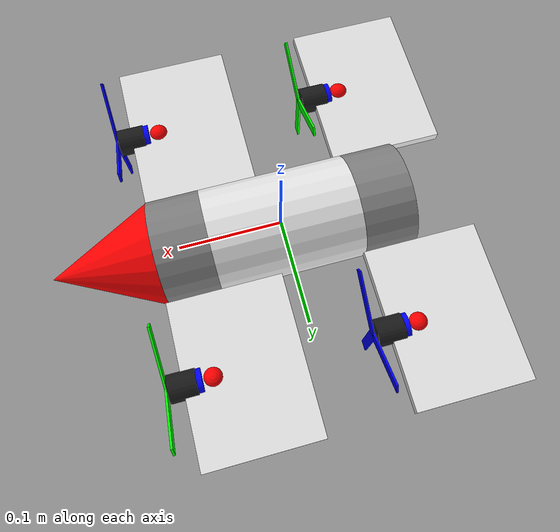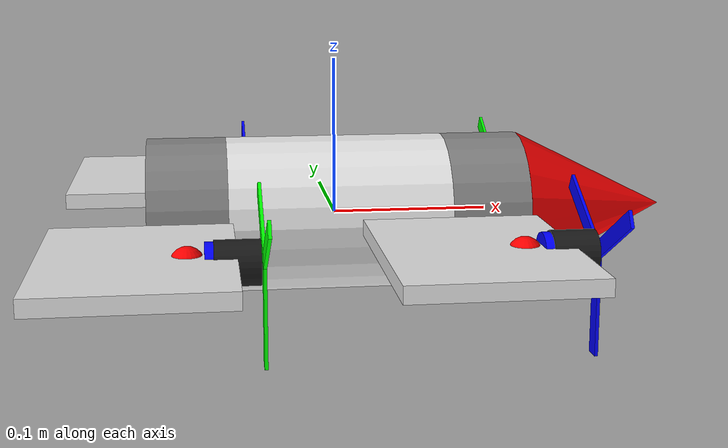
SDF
<?xml version="1.0"?>
<sdf version="1.9">
  <model name="morphing_quad">
    <pose>0 0 0 0 0 0</pose>
    <link name="base_link">
      <inertial>
        <pose degrees="true">0 0 0 0 90 0</pose>
        <mass>0.3</mass>
        <inertia>
          <ixx>0.0006775</ixx>
          <ixy>0</ixy>
          <ixz>0</ixz>
          <iyy>0.0006775</iyy>
          <iyz>0</iyz>
          <izz>0.000375</izz>
        </inertia>
      </inertial>
      <collision name="collision">
        <pose degrees="true">0 0 0 0 90 0</pose>
        <geometry>
          <box>
            <size>0.1 0.1 0.140</size>
          </box>
        </geometry>
        <surface>
          <friction>
            <ode>
              <mu>1.0</mu>
              <mu2>1.0</mu2>
            </ode>
          </friction>
        </surface>
      </collision>
      <visual name="visual">
        <pose degrees="true">0 0 0 0 90 0</pose>
        <geometry>
          <cylinder>
            <radius>0.05</radius>
            <length>0.140</length>
          </cylinder>
        </geometry>
        <material>
          <ambient>0.9 0.9 0.9 1</ambient>
          <diffuse>0.9 0.9 0.9 1</diffuse>
          <specular>0.1 0.1 0.1 1</specular>
        </material>
      </visual>
      <sensor name="imu_sensor" type="imu">
        <pose degrees="true">0 0 0 180 0 0</pose>
        <always_on>1</always_on>
        <update_rate>1000.0</update_rate>
      </sensor>
    </link>

    <link name="fuselage_front_link">
      <pose>0.095 0 0 0 0 0</pose>
      <inertial>
        <pose degrees="true">0 0 0 0 90 0</pose>
        <mass>0.05</mass>
        <inertia>
          <ixx>5.54167E-05</ixx>
          <ixy>0</ixy>
          <ixz>0</ixz>
          <iyy>5.54167E-05</iyy>
          <iyz>0</iyz>
          <izz>0.00009</izz>
        </inertia>
      </inertial>
      <collision name="collision">
        <pose degrees="true">0 0 0 0 90 0</pose>
        <geometry>
          <cylinder>
            <radius>0.05</radius>
            <length>0.05</length>
          </cylinder>
        </geometry>
      </collision>
      <collision name="nose_cone_collision">
        <pose degrees="true">0.075 0 0 0 90 0</pose>
        <geometry>
          <cone>
            <radius>0.05</radius>
            <length>0.10</length>
          </cone>
        </geometry>
      </collision>
      <visual name="visual">
        <pose degrees="true">0 0 0 0 90 0</pose>
        <geometry>
          <cylinder>
            <radius>0.05</radius>
            <length>0.05</length>
          </cylinder>
        </geometry>
        <material>
          <ambient>0.5 0.5 0.5 1</ambient>
          <diffuse>0.5 0.5 0.5 1</diffuse>
          <specular>0.1 0.1 0.1 1</specular>
        </material>
      </visual>
      <visual name="nose_cone_visual">
        <pose degrees="true">0.075 0 0 0 90 0</pose>
        <geometry>
          <cone>
            <radius>0.05</radius>
            <length>0.10</length>
          </cone>
        </geometry>
        <material>
          <ambient>1 0 0 1</ambient>
          <diffuse>1 0 0 1</diffuse>
          <specular>0.1 0.1 0.1 1</specular>
        </material>
      </visual>
    </link>
    <joint name="fuselage_front_joint" type="revolute">
      <pose>-0.025 0 0 0 0 0</pose>
      <parent>base_link</parent>
      <child>fuselage_front_link</child>
      <axis>
        <xyz>0 0 1</xyz>
        <limit>
          <lower>0</lower>
          <upper>0</upper>
        </limit>
        <dynamics>
          <damping>0.1</damping>
        </dynamics>
      </axis>
    </joint>

    <link name="fuselage_back_link">
      <pose>-0.095 0 0 0 0 0</pose>
      <inertial>
        <pose degrees="true">0 0 0 0 90 0</pose>
        <mass>0.05</mass>
        <inertia>
          <ixx>5.54167E-05</ixx>
          <ixy>0</ixy>
          <ixz>0</ixz>
          <iyy>5.54167E-05</iyy>
          <iyz>0</iyz>
          <izz>0.00009</izz>
        </inertia>
      </inertial>
      <collision name="collision">
        <pose degrees="true">0 0 0 0 90 0</pose>
        <geometry>
          <cylinder>
            <radius>0.05</radius>
            <length>0.05</length>
          </cylinder>
        </geometry>
      </collision>
      <visual name="visual">
        <pose degrees="true">0 0 0 0 90 0</pose>
        <geometry>
          <cylinder>
            <radius>0.05</radius>
            <length>0.05</length>
          </cylinder>
        </geometry>
        <material>
          <ambient>0.5 0.5 0.5 1</ambient>
          <diffuse>0.5 0.5 0.5 1</diffuse>
          <specular>0.1 0.1 0.1 1</specular>
        </material>
      </visual>
    </link>
    <joint name="fuselage_back_joint" type="revolute">
      <pose>0.025 0 0 0 0 0</pose>
      <parent>base_link</parent>
      <child>fuselage_back_link</child>
      <axis>
        <xyz>0 0 1</xyz>
        <limit>
          <lower>0</lower>
          <upper>0</upper>
        </limit>
        <dynamics>
          <damping>0.1</damping>
        </dynamics>
      </axis>
    </joint>

    <link name="wing_front_left_link">
      <pose>0.0675 0.125 0 0 0 0</pose>
      <inertial>
        <mass>0.025</mass>
        <inertia>
          <ixx>4.70833E-05</ixx>
          <ixy>0</ixy>
          <ixz>0</ixz>
          <iyy>2.54167E-05</iyy>
          <iyz>0</iyz>
          <izz>7.20833E-05</izz>
        </inertia>
      </inertial>
      <collision name="collision">
        <geometry>
          <box>
            <size>0.110 0.150 0.010</size>
          </box>
        </geometry>
      </collision>
      <visual name="visual">
        <geometry>
          <box>
            <size>0.110 0.150 0.010</size>
          </box>
        </geometry>
        <material>
          <ambient>0.9 0.9 0.9 1</ambient>
          <diffuse>0.9 0.9 0.9 1</diffuse>
          <specular>0.1 0.1 0.1 1</specular>
        </material>
      </visual>
      <visual name="motor_visual">
        <pose degrees="true">0.05 0 0 0 90 0</pose>
        <geometry>
          <cylinder>
            <radius>0.012</radius>
            <length>0.026</length>
          </cylinder>
        </geometry>
        <material>
          <ambient>0 0 1 1</ambient>
          <diffuse>0 0 1 1</diffuse>
          <specular>0.1 0.1 0.1 1</specular>
        </material>
      </visual>
      <!-- debug visual for lift-drag centre of pressure -->
      <visual name="cp_visual">
        <pose>0.0275 0 0 0 0 0</pose>
        <geometry>
          <sphere>
            <radius>0.01</radius>
          </sphere>
        </geometry>
        <material>
          <ambient>1 0 0 1</ambient>
          <diffuse>1 0 0 1</diffuse>
          <specular>0.1 0.1 0.1 1</specular>
        </material>
      </visual>
    </link>
    <joint name="wing_front_left_joint" type="revolute">
      <pose>0.0275 -0.075 0 0 0 0</pose>
      <parent>fuselage_front_link</parent>
      <child>wing_front_left_link</child>
      <axis>
        <xyz>0 1 0</xyz>
        <limit>
          <lower>-2.0943951023931953</lower>
          <upper>0.5235987755982988</upper>
        </limit>
        <dynamics>
          <damping>0.01</damping>
        </dynamics>
      </axis>
    </joint>

    <link name="wing_front_right_link">
      <pose>0.0675 -0.125 0 0 0 0</pose>
      <inertial>
        <mass>0.025</mass>
        <inertia>
          <ixx>4.70833E-05</ixx>
          <ixy>0</ixy>
          <ixz>0</ixz>
          <iyy>2.54167E-05</iyy>
          <iyz>0</iyz>
          <izz>7.20833E-05</izz>
        </inertia>
      </inertial>
      <collision name="collision">
        <geometry>
          <box>
            <size>0.110 0.150 0.010</size>
          </box>
        </geometry>
      </collision>
      <visual name="visual">
        <geometry>
          <box>
            <size>0.110 0.150 0.010</size>
          </box>
        </geometry>
        <material>
          <ambient>0.9 0.9 0.9 1</ambient>
          <diffuse>0.9 0.9 0.9 1</diffuse>
          <specular>0.1 0.1 0.1 1</specular>
        </material>
      </visual>
      <visual name="motor_visual">
        <pose degrees="true">0.05 0 0 0 90 0</pose>
        <geometry>
          <cylinder>
            <radius>0.012</radius>
            <length>0.026</length>
          </cylinder>
        </geometry>
        <material>
          <ambient>0 0 1 1</ambient>
          <diffuse>0 0 1 1</diffuse>
          <specular>0.1 0.1 0.1 1</specular>
        </material>
      </visual>
      <!-- debug visual for lift-drag centre of pressure -->
      <visual name="cp_visual">
        <pose>0.0275 0 0 0 0 0</pose>
        <geometry>
          <sphere>
            <radius>0.01</radius>
          </sphere>
        </geometry>
        <material>
          <ambient>1 0 0 1</ambient>
          <diffuse>1 0 0 1</diffuse>
          <specular>0.1 0.1 0.1 1</specular>
        </material>
      </visual>
    </link>
    <joint name="wing_front_right_joint" type="revolute">
      <pose>0.0275 0.075 0 0 0 0</pose>
      <parent>fuselage_front_link</parent>
      <child>wing_front_right_link</child>
      <axis>
        <xyz>0 1 0</xyz>
        <limit>
          <lower>-2.0943951023931953</lower>
          <upper>0.5235987755982988</upper>
        </limit>
        <dynamics>
          <damping>0.01</damping>
        </dynamics>
      </axis>
    </joint>

    <link name="wing_back_left_link">
      <pose>-0.1225 0.125 0 0 0 0</pose>
      <inertial>
        <mass>0.025</mass>
        <inertia>
          <ixx>4.70833E-05</ixx>
          <ixy>0</ixy>
          <ixz>0</ixz>
          <iyy>2.54167E-05</iyy>
          <iyz>0</iyz>
          <izz>7.20833E-05</izz>
        </inertia>
      </inertial>
      <collision name="collision">
        <geometry>
          <box>
            <size>0.110 0.150 0.010</size>
          </box>
        </geometry>
      </collision>
      <visual name="visual">
        <geometry>
          <box>
            <size>0.110 0.150 0.010</size>
          </box>
        </geometry>
        <material>
          <ambient>0.9 0.9 0.9 1</ambient>
          <diffuse>0.9 0.9 0.9 1</diffuse>
          <specular>0.1 0.1 0.1 1</specular>
        </material>
      </visual>
      <visual name="motor_visual">
        <pose degrees="true">0.05 0 0 0 90 0</pose>
        <geometry>
          <cylinder>
            <radius>0.012</radius>
            <length>0.026</length>
          </cylinder>
        </geometry>
        <material>
          <ambient>0 0 1 1</ambient>
          <diffuse>0 0 1 1</diffuse>
          <specular>0.1 0.1 0.1 1</specular>
        </material>
      </visual>
      <!-- debug visual for lift-drag centre of pressure -->
      <visual name="cp_visual">
        <pose>0.0275 0 0 0 0 0</pose>
        <geometry>
          <sphere>
            <radius>0.01</radius>
          </sphere>
        </geometry>
        <material>
          <ambient>1 0 0 1</ambient>
          <diffuse>1 0 0 1</diffuse>
          <specular>0.1 0.1 0.1 1</specular>
        </material>
      </visual>
    </link>
    <joint name="wing_back_left_joint" type="revolute">
      <pose>0.0275 -0.075 0 0 0 0</pose>
      <parent>fuselage_back_link</parent>
      <child>wing_back_left_link</child>
      <axis>
        <xyz>0 1 0</xyz>
        <limit>
          <lower>-2.0943951023931953</lower>
          <upper>0.5235987755982988</upper>
        </limit>
        <dynamics>
          <damping>0.01</damping>
        </dynamics>
      </axis>
    </joint>

    <link name="wing_back_right_link">
      <pose>-0.1225 -0.125 0 0 0 0</pose>
      <inertial>
        <mass>0.025</mass>
        <inertia>
          <ixx>4.70833E-05</ixx>
          <ixy>0</ixy>
          <ixz>0</ixz>
          <iyy>2.54167E-05</iyy>
          <iyz>0</iyz>
          <izz>7.20833E-05</izz>
        </inertia>
      </inertial>
      <collision name="collision">
        <geometry>
          <box>
            <size>0.110 0.150 0.010</size>
          </box>
        </geometry>
      </collision>
      <visual name="visual">
        <geometry>
          <box>
            <size>0.110 0.150 0.010</size>
          </box>
        </geometry>
        <material>
          <ambient>0.9 0.9 0.9 1</ambient>
          <diffuse>0.9 0.9 0.9 1</diffuse>
          <specular>0.1 0.1 0.1 1</specular>
        </material>
      </visual>
      <visual name="motor_visual">
        <pose degrees="true">0.05 0 0 0 90 0</pose>
        <geometry>
          <cylinder>
            <radius>0.012</radius>
            <length>0.026</length>
          </cylinder>
        </geometry>
        <material>
          <ambient>0 0 1 1</ambient>
          <diffuse>0 0 1 1</diffuse>
          <specular>0.1 0.1 0.1 1</specular>
        </material>
      </visual>
      <!-- debug visual for lift-drag centre of pressure -->
      <visual name="cp_visual">
        <pose>0.0275 0 0 0 0 0</pose>
        <geometry>
          <sphere>
            <radius>0.01</radius>
          </sphere>
        </geometry>
        <material>
          <ambient>1 0 0 1</ambient>
          <diffuse>1 0 0 1</diffuse>
          <specular>0.1 0.1 0.1 1</specular>
        </material>
      </visual>
    </link>
    <joint name="wing_back_right_joint" type="revolute">
      <pose>0.0275 0.075 0 0 0 0</pose>
      <parent>fuselage_back_link</parent>
      <child>wing_back_right_link</child>
      <axis>
        <xyz>0 1 0</xyz>
        <limit>
          <lower>-2.0943951023931953</lower>
          <upper>0.5235987755982988</upper>
        </limit>
        <dynamics>
          <damping>0.01</damping>
        </dynamics>
      </axis>
    </joint>

    <link name="motor_front_left_link">
      <pose degrees="true">0.1225 0.125 0 0 90 0</pose>
      <inertial>
        <mass>0.033</mass>
        <inertia>
          <ixx>3.25325E-06</ixx>
          <ixy>0</ixy>
          <ixz>0</ixz>
          <iyy>3.25325E-06</iyy>
          <iyz>0</iyz>
          <izz>2.7885E-06</izz>
        </inertia>
      </inertial>
      <collision name="collision">
        <geometry>
          <cylinder>
            <radius>0.013</radius>
            <length>0.026</length>
          </cylinder>
        </geometry>
      </collision>
      <visual name="visual">
        <geometry>
          <cylinder>
            <radius>0.013</radius>
            <length>0.026</length>
          </cylinder>
        </geometry>
        <material>
          <ambient>0.1 0.1 0.1 1</ambient>
          <diffuse>0.1 0.1 0.1 1</diffuse>
          <specular>0.1 0.1 0.1 1</specular>
        </material>
      </visual>
      <visual name="prop_blade_1_visual">
        <pose degrees="true">0.030625 0 0.015 0 0 0</pose>
        <geometry>
          <box>
            <size>0.06125 0.01 0.002</size>
          </box>
        </geometry>
        <material>
          <ambient>0 1 0 1</ambient>
          <diffuse>0 1 0 1</diffuse>
          <specular>0.1 0.1 0.1 1</specular>
        </material>
      </visual>
      <visual name="prop_blade_2_visual">
        <pose degrees="true">-0.0153125 0.026522027990898433 0.015 0 0 120</pose>
        <geometry>
          <box>
            <size>0.06125 0.01 0.002</size>
          </box>
        </geometry>
        <material>
          <ambient>0 1 0 1</ambient>
          <diffuse>0 1 0 1</diffuse>
          <specular>0.1 0.1 0.1 1</specular>
        </material>
      </visual>
      <visual name="prop_blade_3_visual">
        <pose degrees="true">-0.0153125 -0.026522027990898433 0.015 0 0 240</pose>
        <geometry>
          <box>
            <size>0.06125 0.01 0.002</size>
          </box>
        </geometry>
        <material>
          <ambient>0 1 0 1</ambient>
          <diffuse>0 1 0 1</diffuse>
          <specular>0.1 0.1 0.1 1</specular>
        </material>
      </visual>
    </link>
    <joint name="motor_front_left_joint" type="revolute">
      <pose>0 0 0 0 0 0</pose>
      <parent>wing_front_left_link</parent>
      <child>motor_front_left_link</child>
      <axis>
        <xyz>0 0 1</xyz>
        <limit>
          <lower>-1.0e16</lower>
          <upper>1.0e16</upper>
        </limit>
        <dynamics>
          <damping>0.004</damping>
        </dynamics>
      </axis>
    </joint>

    <link name="motor_front_right_link">
      <pose degrees="true">0.1225 -0.125 0 0 90 0</pose>
      <inertial>
        <mass>0.033</mass>
        <inertia>
          <ixx>3.25325E-06</ixx>
          <ixy>0</ixy>
          <ixz>0</ixz>
          <iyy>3.25325E-06</iyy>
          <iyz>0</iyz>
          <izz>2.7885E-06</izz>
        </inertia>
      </inertial>
      <collision name="collision">
        <geometry>
          <cylinder>
            <radius>0.013</radius>
            <length>0.026</length>
          </cylinder>
        </geometry>
      </collision>
      <visual name="visual">
        <geometry>
          <cylinder>
            <radius>0.013</radius>
            <length>0.026</length>
          </cylinder>
        </geometry>
        <material>
          <ambient>0.1 0.1 0.1 1</ambient>
          <diffuse>0.1 0.1 0.1 1</diffuse>
          <specular>0.1 0.1 0.1 1</specular>
        </material>
      </visual>
      <visual name="prop_blade_1_visual">
        <pose degrees="true">0.030625 0 0.015 0 0 0</pose>
        <geometry>
          <box>
            <size>0.06125 0.01 0.002</size>
          </box>
        </geometry>
        <material>
          <ambient>0 0 1 1</ambient>
          <diffuse>0 0 1 1</diffuse>
          <specular>0.1 0.1 0.1 1</specular>
        </material>
      </visual>
      <visual name="prop_blade_2_visual">
        <pose degrees="true">-0.0153125 0.026522027990898433 0.015 0 0 120</pose>
        <geometry>
          <box>
            <size>0.06125 0.01 0.002</size>
          </box>
        </geometry>
        <material>
          <ambient>0 0 1 1</ambient>
          <diffuse>0 0 1 1</diffuse>
          <specular>0.1 0.1 0.1 1</specular>
        </material>
      </visual>
      <visual name="prop_blade_3_visual">
        <pose degrees="true">-0.0153125 -0.026522027990898433 0.015 0 0 240</pose>
        <geometry>
          <box>
            <size>0.06125 0.01 0.002</size>
          </box>
        </geometry>
        <material>
          <ambient>0 0 1 1</ambient>
          <diffuse>0 0 1 1</diffuse>
          <specular>0.1 0.1 0.1 1</specular>
        </material>
      </visual>
    </link>
    <joint name="motor_front_right_joint" type="revolute">
      <pose>0 0 0 0 0 0</pose>
      <parent>wing_front_right_link</parent>
      <child>motor_front_right_link</child>
      <axis>
        <xyz>0 0 1</xyz>
        <limit>
          <lower>-1.0e16</lower>
          <upper>1.0e16</upper>
        </limit>
        <dynamics>
          <damping>0.004</damping>
        </dynamics>
      </axis>
    </joint>

    <link name="motor_back_left_link">
      <pose degrees="true">-0.0675 0.125 0 0 90 0</pose>
      <inertial>
        <mass>0.033</mass>
        <inertia>
          <ixx>3.25325E-06</ixx>
          <ixy>0</ixy>
          <ixz>0</ixz>
          <iyy>3.25325E-06</iyy>
          <iyz>0</iyz>
          <izz>2.7885E-06</izz>
        </inertia>
      </inertial>
      <collision name="collision">
        <geometry>
          <cylinder>
            <radius>0.013</radius>
            <length>0.026</length>
          </cylinder>
        </geometry>
      </collision>
      <visual name="visual">
        <geometry>
          <cylinder>
            <radius>0.013</radius>
            <length>0.026</length>
          </cylinder>
        </geometry>
        <material>
          <ambient>0.1 0.1 0.1 1</ambient>
          <diffuse>0.1 0.1 0.1 1</diffuse>
          <specular>0.1 0.1 0.1 1</specular>
        </material>
      </visual>
      <visual name="prop_blade_1_visual">
        <pose degrees="true">0.030625 0 0.015 0 0 0</pose>
        <geometry>
          <box>
            <size>0.06125 0.01 0.002</size>
          </box>
        </geometry>
        <material>
          <ambient>0 0 1 1</ambient>
          <diffuse>0 0 1 1</diffuse>
          <specular>0.1 0.1 0.1 1</specular>
        </material>
      </visual>
      <visual name="prop_blade_2_visual">
        <pose degrees="true">-0.0153125 0.026522027990898433 0.015 0 0 120</pose>
        <geometry>
          <box>
            <size>0.06125 0.01 0.002</size>
          </box>
        </geometry>
        <material>
          <ambient>0 0 1 1</ambient>
          <diffuse>0 0 1 1</diffuse>
          <specular>0.1 0.1 0.1 1</specular>
        </material>
      </visual>
      <visual name="prop_blade_3_visual">
        <pose degrees="true">-0.0153125 -0.026522027990898433 0.015 0 0 240</pose>
        <geometry>
          <box>
            <size>0.06125 0.01 0.002</size>
          </box>
        </geometry>
        <material>
          <ambient>0 0 1 1</ambient>
          <diffuse>0 0 1 1</diffuse>
          <specular>0.1 0.1 0.1 1</specular>
        </material>
      </visual>
    </link>
    <joint name="motor_back_left_joint" type="revolute">
      <pose>0 0 0 0 0 0</pose>
      <parent>wing_back_left_link</parent>
      <child>motor_back_left_link</child>
      <axis>
        <xyz>0 0 1</xyz>
        <limit>
          <lower>-1.0e16</lower>
          <upper>1.0e16</upper>
        </limit>
        <dynamics>
          <damping>0.004</damping>
        </dynamics>
      </axis>
    </joint>

    <link name="motor_back_right_link">
      <pose degrees="true">-0.0675 -0.125 0 0 90 0</pose>
      <inertial>
        <mass>0.033</mass>
        <inertia>
          <ixx>3.25325E-06</ixx>
          <ixy>0</ixy>
          <ixz>0</ixz>
          <iyy>3.25325E-06</iyy>
          <iyz>0</iyz>
          <izz>2.7885E-06</izz>
        </inertia>
      </inertial>
      <collision name="collision">
        <geometry>
          <cylinder>
            <radius>0.013</radius>
            <length>0.026</length>
          </cylinder>
        </geometry>
      </collision>
      <visual name="visual">
        <geometry>
          <cylinder>
            <radius>0.013</radius>
            <length>0.026</length>
          </cylinder>
        </geometry>
        <material>
          <ambient>0.1 0.1 0.1 1</ambient>
          <diffuse>0.1 0.1 0.1 1</diffuse>
          <specular>0.1 0.1 0.1 1</specular>
        </material>
      </visual>
      <visual name="prop_blade_1_visual">
        <pose degrees="true">0.030625 0 0.015 0 0 0</pose>
        <geometry>
          <box>
            <size>0.06125 0.01 0.002</size>
          </box>
        </geometry>
        <material>
          <ambient>0 1 0 1</ambient>
          <diffuse>0 1 0 1</diffuse>
          <specular>0.1 0.1 0.1 1</specular>
        </material>
      </visual>
      <visual name="prop_blade_2_visual">
        <pose degrees="true">-0.0153125 0.026522027990898433 0.015 0 0 120</pose>
        <geometry>
          <box>
            <size>0.06125 0.01 0.002</size>
          </box>
        </geometry>
        <material>
          <ambient>0 1 0 1</ambient>
          <diffuse>0 1 0 1</diffuse>
          <specular>0.1 0.1 0.1 1</specular>
        </material>
      </visual>
      <visual name="prop_blade_3_visual">
        <pose degrees="true">-0.0153125 -0.026522027990898433 0.015 0 0 240</pose>
        <geometry>
          <box>
            <size>0.06125 0.01 0.002</size>
          </box>
        </geometry>
        <material>
          <ambient>0 1 0 1</ambient>
          <diffuse>0 1 0 1</diffuse>
          <specular>0.1 0.1 0.1 1</specular>
        </material>
      </visual>
    </link>
    <joint name="motor_back_right_joint" type="revolute">
      <pose>0 0 0 0 0 0</pose>
      <parent>wing_back_right_link</parent>
      <child>motor_back_right_link</child>
      <axis>
        <xyz>0 0 1</xyz>
        <limit>
          <lower>-1.0e16</lower>
          <upper>1.0e16</upper>
        </limit>
        <dynamics>
          <damping>0.004</damping>
        </dynamics>
      </axis>
    </joint>

    <!-- plugins -->
    <plugin name="gz::sim::systems::JointStatePublisher"
        filename="gz-sim-joint-state-publisher-system">
    </plugin>

    <!-- wing position controllers -->
    <plugin name="gz::sim::systems::JointPositionController"
        filename="gz-sim-joint-position-controller-system">
      <joint_name>wing_front_left_joint</joint_name>
      <topic>/model/morphing_quad/joint/wing_front_left_joint/cmd_pos</topic>
      <initial_position>0</initial_position>
      <p_gain>0.4</p_gain>
      <i_gain>0</i_gain>
      <d_gain>1.0e-2</d_gain>
      <i_max>1</i_max>
      <i_min>-1</i_min>
      <cmd_max>1.0e4</cmd_max>
      <cmd_min>-1.0e4</cmd_min>
    </plugin>
    <plugin name="gz::sim::systems::JointPositionController"
        filename="gz-sim-joint-position-controller-system">
      <joint_name>wing_front_right_joint</joint_name>
      <topic>/model/morphing_quad/joint/wing_front_right_joint/cmd_pos</topic>
      <initial_position>0</initial_position>
      <p_gain>0.4</p_gain>
      <i_gain>0</i_gain>
      <d_gain>1.0e-2</d_gain>
      <i_max>1</i_max>
      <i_min>-1</i_min>
      <cmd_max>1.0e4</cmd_max>
      <cmd_min>-1.0e4</cmd_min>
    </plugin>
    <plugin name="gz::sim::systems::JointPositionController"
        filename="gz-sim-joint-position-controller-system">
      <joint_name>wing_back_left_joint</joint_name>
      <topic>/model/morphing_quad/joint/wing_back_left_joint/cmd_pos</topic>
      <initial_position>0</initial_position>
      <p_gain>0.4</p_gain>
      <i_gain>0</i_gain>
      <d_gain>1.0e-2</d_gain>
      <i_max>1</i_max>
      <i_min>-1</i_min>
      <cmd_max>1.0e4</cmd_max>
      <cmd_min>-1.0e4</cmd_min>
    </plugin>
    <plugin name="gz::sim::systems::JointPositionController"
        filename="gz-sim-joint-position-controller-system">
      <joint_name>wing_back_right_joint</joint_name>
      <topic>/model/morphing_quad/joint/wing_back_right_joint/cmd_pos</topic>
      <initial_position>0</initial_position>
      <p_gain>0.4</p_gain>
      <i_gain>0</i_gain>
      <d_gain>1.0e-2</d_gain>
      <i_max>1</i_max>
      <i_min>-1</i_min>
      <cmd_max>1.0e4</cmd_max>
      <cmd_min>-1.0e4</cmd_min>
    </plugin>

    <!-- motor velocity controllers -->

    <!-- motor1 prop blades, ccw, motor_front_right_link -->
    <plugin name="gz::sim::systems::LiftDrag"
      filename="gz-sim-lift-drag-system">
      <a0>0.3</a0>
      <alpha_stall>1.4</alpha_stall>
      <cla>4.2500</cla>
      <cda>0.10</cda>
      <cma>0.00</cma>
      <cla_stall>-0.025</cla_stall>
      <cda_stall>0.0</cda_stall>
      <cma_stall>0.0</cma_stall>
      <area>0.0015</area>
      <air_density>1.2041</air_density>
      <cp>0.063 0 0</cp>
      <forward>0 1 0</forward>
      <upward>0 0 1</upward>
      <link_name>motor_front_right_link</link_name>
    </plugin>
    <plugin name="gz::sim::systems::LiftDrag"
      filename="gz-sim-lift-drag-system">
      <a0>0.3</a0>
      <alpha_stall>1.4</alpha_stall>
      <cla>4.2500</cla>
      <cda>0.10</cda>
      <cma>0.00</cma>
      <cla_stall>-0.025</cla_stall>
      <cda_stall>0.0</cda_stall>
      <cma_stall>0.0</cma_stall>
      <area>0.0015</area>
      <air_density>1.2041</air_density>
      <cp>-0.0315 0.0545596 0</cp>
      <forward>-0.866025404 -0.5 0</forward>
      <upward>0 0 1</upward>
      <link_name>motor_front_right_link</link_name>
    </plugin>
    <plugin name="gz::sim::systems::LiftDrag"
      filename="gz-sim-lift-drag-system">
      <a0>0.3</a0>
      <alpha_stall>1.4</alpha_stall>
      <cla>4.2500</cla>
      <cda>0.10</cda>
      <cma>0.00</cma>
      <cla_stall>-0.025</cla_stall>
      <cda_stall>0.0</cda_stall>
      <cma_stall>0.0</cma_stall>
      <area>0.0015</area>
      <air_density>1.2041</air_density>
      <cp>-0.0315 -0.0545596 0</cp>
      <forward>0.866025404 -0.5 0</forward>
      <upward>0 0 1</upward>
      <link_name>motor_front_right_link</link_name>
    </plugin>

    <!-- motor2 prop blades, ccw, motor_back_left_link -->
    <plugin name="gz::sim::systems::LiftDrag"
      filename="gz-sim-lift-drag-system">
      <a0>0.3</a0>
      <alpha_stall>1.4</alpha_stall>
      <cla>4.2500</cla>
      <cda>0.10</cda>
      <cma>0.00</cma>
      <cla_stall>-0.025</cla_stall>
      <cda_stall>0.0</cda_stall>
      <cma_stall>0.0</cma_stall>
      <area>0.0015</area>
      <air_density>1.2041</air_density>
      <cp>0.063 0 0</cp>
      <forward>0 1 0</forward>
      <upward>0 0 1</upward>
      <link_name>motor_back_left_link</link_name>
    </plugin>
    <plugin name="gz::sim::systems::LiftDrag"
      filename="gz-sim-lift-drag-system">
      <a0>0.3</a0>
      <alpha_stall>1.4</alpha_stall>
      <cla>4.2500</cla>
      <cda>0.10</cda>
      <cma>0.00</cma>
      <cla_stall>-0.025</cla_stall>
      <cda_stall>0.0</cda_stall>
      <cma_stall>0.0</cma_stall>
      <area>0.0015</area>
      <air_density>1.2041</air_density>
      <cp>-0.0315 0.0545596 0</cp>
      <forward>-0.866025404 -0.5 0</forward>
      <upward>0 0 1</upward>
      <link_name>motor_back_left_link</link_name>
    </plugin>
    <plugin name="gz::sim::systems::LiftDrag"
      filename="gz-sim-lift-drag-system">
      <a0>0.3</a0>
      <alpha_stall>1.4</alpha_stall>
      <cla>4.2500</cla>
      <cda>0.10</cda>
      <cma>0.00</cma>
      <cla_stall>-0.025</cla_stall>
      <cda_stall>0.0</cda_stall>
      <cma_stall>0.0</cma_stall>
      <area>0.0015</area>
      <air_density>1.2041</air_density>
      <cp>-0.0315 -0.0545596 0</cp>
      <forward>0.866025404 -0.5 0</forward>
      <upward>0 0 1</upward>
      <link_name>motor_back_left_link</link_name>
    </plugin>

    <!-- motor3 prop blade, cw, motor_front_left_link -->
    <plugin name="gz::sim::systems::LiftDrag"
      filename="gz-sim-lift-drag-system">
      <a0>0.3</a0>
      <alpha_stall>1.4</alpha_stall>
      <cla>4.2500</cla>
      <cda>0.10</cda>
      <cma>0.00</cma>
      <cla_stall>-0.025</cla_stall>
      <cda_stall>0.0</cda_stall>
      <cma_stall>0.0</cma_stall>
      <area>0.0015</area>
      <air_density>1.2041</air_density>
      <cp>0.063 0 0</cp>
      <forward>0 -1 0</forward>
      <upward>0 0 1</upward>
      <link_name>motor_front_left_link</link_name>
    </plugin>
    <plugin name="gz::sim::systems::LiftDrag"
      filename="gz-sim-lift-drag-system">
      <a0>0.3</a0>
      <alpha_stall>1.4</alpha_stall>
      <cla>4.2500</cla>
      <cda>0.10</cda>
      <cma>0.00</cma>
      <cla_stall>-0.025</cla_stall>
      <cda_stall>0.0</cda_stall>
      <cma_stall>0.0</cma_stall>
      <area>0.0015</area>
      <air_density>1.2041</air_density>
      <cp>-0.0315 0.0545596 0</cp>
      <forward>0.866025404 0.5 0</forward>
      <upward>0 0 1</upward>
      <link_name>motor_front_left_link</link_name>
    </plugin>
    <plugin name="gz::sim::systems::LiftDrag"
      filename="gz-sim-lift-drag-system">
      <a0>0.3</a0>
      <alpha_stall>1.4</alpha_stall>
      <cla>4.2500</cla>
      <cda>0.10</cda>
      <cma>0.00</cma>
      <cla_stall>-0.025</cla_stall>
      <cda_stall>0.0</cda_stall>
      <cma_stall>0.0</cma_stall>
      <area>0.0015</area>
      <air_density>1.2041</air_density>
      <cp>-0.0315 -0.0545596 0</cp>
      <forward>-0.866025404 0.5 0</forward>
      <upward>0 0 1</upward>
      <link_name>motor_front_left_link</link_name>
    </plugin>

    <!-- motor4 prop blades, cw, motor_back_right_link -->
    <plugin name="gz::sim::systems::LiftDrag"
      filename="gz-sim-lift-drag-system">
      <a0>0.3</a0>
      <alpha_stall>1.4</alpha_stall>
      <cla>4.2500</cla>
      <cda>0.10</cda>
      <cma>0.00</cma>
      <cla_stall>-0.025</cla_stall>
      <cda_stall>0.0</cda_stall>
      <cma_stall>0.0</cma_stall>
      <area>0.0015</area>
      <air_density>1.2041</air_density>
      <cp>0.063 0 0</cp>
      <forward>0 -1 0</forward>
      <upward>0 0 1</upward>
      <link_name>motor_back_right_link</link_name>
    </plugin>
    <plugin name="gz::sim::systems::LiftDrag"
      filename="gz-sim-lift-drag-system">
      <a0>0.3</a0>
      <alpha_stall>1.4</alpha_stall>
      <cla>4.2500</cla>
      <cda>0.10</cda>
      <cma>0.00</cma>
      <cla_stall>-0.025</cla_stall>
      <cda_stall>0.0</cda_stall>
      <cma_stall>0.0</cma_stall>
      <area>0.0015</area>
      <air_density>1.2041</air_density>
      <cp>-0.0315 0.0545596 0</cp>
      <forward>0.866025404 0.5 0</forward>
      <upward>0 0 1</upward>
      <link_name>motor_back_right_link</link_name>
    </plugin>
    <plugin name="gz::sim::systems::LiftDrag"
      filename="gz-sim-lift-drag-system">
      <a0>0.3</a0>
      <alpha_stall>1.4</alpha_stall>
      <cla>4.2500</cla>
      <cda>0.10</cda>
      <cma>0.00</cma>
      <cla_stall>-0.025</cla_stall>
      <cda_stall>0.0</cda_stall>
      <cma_stall>0.0</cma_stall>
      <area>0.0015</area>
      <air_density>1.2041</air_density>
      <cp>-0.0315 -0.0545596 0</cp>
      <forward>-0.866025404 0.5 0</forward>
      <upward>0 0 1</upward>
      <link_name>motor_back_right_link</link_name>
    </plugin>

    <!-- wings -->
    <plugin filename="gz-sim-lift-drag-system"
        name="gz::sim::systems::LiftDrag">
      <a0>0.13</a0>
      <cla>3.7</cla>
      <cda>0.06417112299</cda>
      <cma>0.0</cma>
      <alpha_stall>0.3391428111</alpha_stall>
      <cla_stall>-3.85</cla_stall>
      <cda_stall>-0.9233984055</cda_stall>
      <cma_stall>0.0</cma_stall>
      <cp>0.0275 0 0</cp>
      <area>0.03</area>
      <air_density>1.2041</air_density>
      <forward>1 0 0</forward>
      <upward>0 0 1</upward>
      <link_name>wing_front_right_link</link_name>
    </plugin>
    <plugin filename="gz-sim-lift-drag-system"
        name="gz::sim::systems::LiftDrag">
      <a0>0.13</a0>
      <cla>3.7</cla>
      <cda>0.06417112299</cda>
      <cma>0.0</cma>
      <alpha_stall>0.3391428111</alpha_stall>
      <cla_stall>-3.85</cla_stall>
      <cda_stall>-0.9233984055</cda_stall>
      <cma_stall>0.0</cma_stall>
      <cp>0.0275 0 0</cp>
      <area>0.03</area>
      <air_density>1.2041</air_density>
      <forward>1 0 0</forward>
      <upward>0 0 1</upward>
      <link_name>wing_front_left_link</link_name>
    </plugin>
    <plugin filename="gz-sim-lift-drag-system"
        name="gz::sim::systems::LiftDrag">
      <a0>0.13</a0>
      <cla>3.7</cla>
      <cda>0.06417112299</cda>
      <cma>0.0</cma>
      <alpha_stall>0.3391428111</alpha_stall>
      <cla_stall>-3.85</cla_stall>
      <cda_stall>-0.9233984055</cda_stall>
      <cma_stall>0.0</cma_stall>
      <cp>0.0275 0 0</cp>
      <area>0.03</area>
      <air_density>1.2041</air_density>
      <forward>1 0 0</forward>
      <upward>0 0 1</upward>
      <link_name>wing_back_right_link</link_name>
    </plugin>
    <plugin filename="gz-sim-lift-drag-system"
        name="gz::sim::systems::LiftDrag">
      <a0>0.13</a0>
      <cla>3.7</cla>
      <cda>0.06417112299</cda>
      <cma>0.0</cma>
      <alpha_stall>0.3391428111</alpha_stall>
      <cla_stall>-3.85</cla_stall>
      <cda_stall>-0.9233984055</cda_stall>
      <cma_stall>0.0</cma_stall>
      <cp>0.0275 0 0</cp>
      <area>0.03</area>
      <air_density>1.2041</air_density>
      <forward>1 0 0</forward>
      <upward>0 0 1</upward>
      <link_name>wing_back_left_link</link_name>
    </plugin>

    <plugin name="ArduPilotPlugin" filename="ArduPilotPlugin">
      <!-- Port settings -->
      <fdm_addr>127.0.0.1</fdm_addr>
      <fdm_port_in>9002</fdm_port_in>
      <connectionTimeoutMaxCount>5</connectionTimeoutMaxCount>
      <lock_step>1</lock_step>
      <have_32_channels>0</have_32_channels>

      <!-- Frame conventions -->
      <modelXYZToAirplaneXForwardZDown degrees="true">0 0 0 180 0 0</modelXYZToAirplaneXForwardZDown>
      <gazeboXYZToNED degrees="true">0 0 0 180 0 90</gazeboXYZToNED>

      <!-- Sensors -->
      <imuName>base_link::imu_sensor</imuName>

      <!-- motor1: ccw -->
      <control channel="4">
        <jointName>motor_front_right_joint</jointName>
        <multiplier>1500</multiplier>
        <offset>0</offset>
        <servo_min>1000</servo_min>
        <servo_max>2000</servo_max>

        <useForce>1</useForce>
        <type>VELOCITY</type>
        <p_gain>0.008</p_gain>
        <i_gain>0</i_gain>
        <d_gain>1.0e-7</d_gain>
        <i_max>-1</i_max>
        <i_min>0</i_min>
        <cmd_max>100.0</cmd_max>
        <cmd_min>-100.0</cmd_min>

      </control>

      <!-- motor2: ccw -->
      <control channel="5">
        <jointName>motor_back_left_joint</jointName>
        <multiplier>1500</multiplier>
        <offset>0</offset>
        <servo_min>1000</servo_min>
        <servo_max>2000</servo_max>

        <useForce>1</useForce>
        <type>VELOCITY</type>
        <p_gain>0.008</p_gain>
        <i_gain>0</i_gain>
        <d_gain>1.0e-7</d_gain>
        <i_max>-1</i_max>
        <i_min>0</i_min>
        <cmd_max>100.0</cmd_max>
        <cmd_min>-100.0</cmd_min>

      </control>

      <!-- motor3: cw -->
      <control channel="6">
          <jointName>motor_front_left_joint</jointName>
          <multiplier>-1500</multiplier>
          <offset>0</offset>
          <servo_min>1000</servo_min>
          <servo_max>2000</servo_max>

          <useForce>1</useForce>
          <type>VELOCITY</type>
          <p_gain>0.008</p_gain>
          <i_gain>0</i_gain>
          <d_gain>1.0e-7</d_gain>
          <i_max>-1</i_max>
          <i_min>0</i_min>
          <cmd_max>100.0</cmd_max>
          <cmd_min>-100.0</cmd_min>

        </control>

      <!-- motor4: cw -->
      <control channel="7">
          <jointName>motor_back_right_joint</jointName>
          <multiplier>-1500</multiplier>
          <offset>0</offset>
          <servo_min>1000</servo_min>
          <servo_max>2000</servo_max>

          <useForce>1</useForce>
          <type>VELOCITY</type>
          <p_gain>0.008</p_gain>
          <i_gain>0</i_gain>
          <d_gain>1.0e-7</d_gain>
          <i_max>-1</i_max>
          <i_min>0</i_min>
          <cmd_max>100.0</cmd_max>
          <cmd_min>-100.0</cmd_min>

        </control>

      <!-- front wing tilt -->
      <control channel="8">
        <jointName>wing_front_left_joint</jointName>
        <multiplier>-2.6179938779914944</multiplier>
        <offset>-0.2</offset>
        <servo_min>1000</servo_min>
        <servo_max>2000</servo_max>
        <type>COMMAND</type>
        <cmd_topic>/model/morphing_quad/joint/wing_front_left_joint/cmd_pos</cmd_topic>
      </control>
      <control channel="9">
        <jointName>wing_front_right_joint</jointName>
        <multiplier>-2.6179938779914944</multiplier>
        <offset>-0.2</offset>
        <servo_min>1000</servo_min>
        <servo_max>2000</servo_max>
        <type>COMMAND</type>
        <cmd_topic>/model/morphing_quad/joint/wing_front_right_joint/cmd_pos</cmd_topic>
      </control>

      <!-- rear wing tilt -->
      <control channel="10">
        <jointName>wing_back_left_joint</jointName>
        <multiplier>-2.6179938779914944</multiplier>
        <offset>-0.2</offset>
        <servo_min>1000</servo_min>
        <servo_max>2000</servo_max>
        <type>COMMAND</type>
        <cmd_topic>/model/morphing_quad/joint/wing_back_left_joint/cmd_pos</cmd_topic>
      </control>
      <control channel="11">
        <jointName>wing_back_right_joint</jointName>
        <multiplier>-2.6179938779914944</multiplier>
        <offset>-0.2</offset>
        <servo_min>1000</servo_min>
        <servo_max>2000</servo_max>
        <type>COMMAND</type>
        <cmd_topic>/model/morphing_quad/joint/wing_back_right_joint/cmd_pos</cmd_topic>
      </control>
    </plugin>
  </model>
</sdf>
